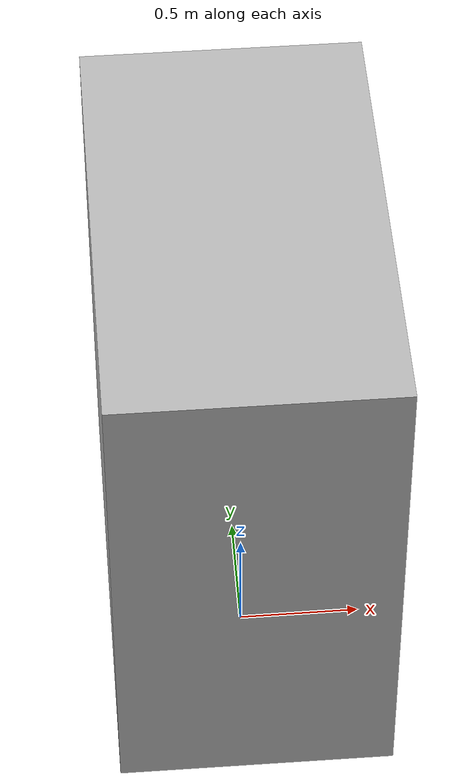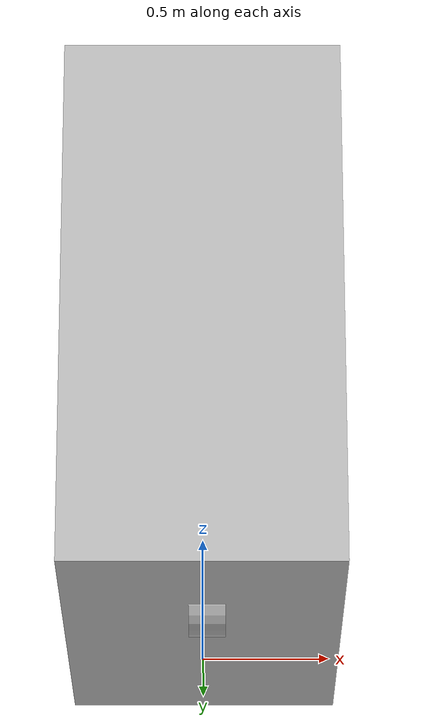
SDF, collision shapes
<?xml version="1.0"?>
<sdf version="1.5">
  <model name="agv1">

    <static>false</static>

    <pose>0.0 0.0 0.13 0.0 0.0 0.0</pose>

    <link name="base_footprint" />

    <link name="base_link">

      <inertial>
        <pose>0.005 0.1475 0.392 0 0 0</pose>
        <inertia>
          <ixx>962.268</ixx>
          <ixy>-2.68</ixy>
          <ixz>13.459</ixz>
          <iyy>963.85</iyy>
          <iyz>81.387</iyz>
          <izz>482.35</izz>
        </inertia>
        <mass>2129.355</mass>
      </inertial>

      <collision name="base_collision">
        <pose>0 0.09 1.085 0 0 0</pose>
        <geometry>
          <box>
            <size>1.108 1.87 2.195</size>
          </box>
        </geometry>
      </collision>

      <visual name="base_visual">
        <pose>0 0 0 0 0 0</pose>
        <geometry>
          <mesh>
            <uri>model://agv_common/meshes/BODY.stl</uri>
          </mesh>
        </geometry>
      </visual>
    </link>

    <link name="steering_part">

      <inertial>
        <pose>-0.0456 -0.212 0.345 0 0 0</pose>
        <inertia>
          <ixx>2.77</ixx>
          <ixy>0</ixy>
          <ixz>0.12</ixz>
          <iyy>2.81</iyy>
          <iyz>-0.11</iyz>
          <izz>0.92</izz>
        </inertia>
        <mass>85.056</mass>
      </inertial>

      <collision name="steering_part_collision">
        <pose>-0.0106 -0.202 0.345 0 0 0</pose>
        <geometry>
          <cylinder>
            <radius>0.175</radius>
            <length>0.158</length>
          </cylinder>
        </geometry>
        <surface>
          <friction>
            <ode>
              <mu>100000.0</mu>
              <mu2>100000.0</mu2>
              <fdir1>0 0 0</fdir1>
              <slip1>0.0</slip1>
              <slip2>0.0</slip2>
            </ode>
          </friction>
          <contact>
            <ode>
              <soft_cfm>0</soft_cfm>
              <soft_erp>0.2</soft_erp>
              <kp>1e+5</kp>
              <kd>1</kd>
              <max_vel>0.01</max_vel>
              <min_depth>0.001</min_depth>
            </ode>
          </contact>
        </surface>
      </collision>

      <visual name="steering_part_visual">
        <pose>-0.0456 -0.212 0.345 0 0 0</pose>
        <geometry>
          <mesh>
            <uri>model://agv_common/meshes/STEERING_PART_RE2.stl</uri>
          </mesh>
        </geometry>
      </visual>
    </link>

    <link name="drive_wheel">

      <inertial>
        <pose>0.0175 -0.2 0.06 0 0 0</pose>
        <inertia>
          <ixx>0.265</ixx>
          <ixy>0.0</ixy>
          <ixz>0.0</ixz>
          <iyy>0.166</iyy>
          <iyz>0.0</iyz>
          <izz>0.166</izz>
        </inertia>
        <mass>21.755</mass>
      </inertial>

      <collision name="drive_wheel_collision">
        <pose>0.0175 -0.2 0.06 0 1.571 0</pose>
        <geometry>
          <cylinder>
            <radius>0.155</radius>
            <length>0.145</length>
          </cylinder>
        </geometry>
        <surface>
          <friction>
            <ode>
              <mu>100000.0</mu>
              <mu2>100000.0</mu2>
              <fdir1>0 0 0</fdir1>
              <slip1>0.0</slip1>
              <slip2>0.0</slip2>
            </ode>
          </friction>
          <contact>
            <ode>
              <soft_cfm>0</soft_cfm>
              <soft_erp>0.2</soft_erp>
              <kp>1e+5</kp>
              <kd>1</kd>
              <max_vel>0.01</max_vel>
              <min_depth>0.001</min_depth>
            </ode>
          </contact>
        </surface>
      </collision>

      <visual name="drive_wheel_visual">
        <pose>0.0175 -0.2 0.06 0 0 0</pose>
        <geometry>
          <mesh>
            <uri>model://agv_common/meshes/DRIVE_WHEEL_RE2.stl</uri>
          </mesh>
        </geometry>
      </visual>
    </link>

    <joint name="base_joint" type="fixed">
      <parent>base_footprint</parent>
      <child>base_link</child>
      <pose>0.0 0.0 1.0 0 0 0</pose>
    </joint>

    <joint name="steering_link_joint" type="revoute">
      <parent>base_link</parent>
      <child>steering_part</child>
      <pose>0.0456 -0.212 0.345 0 0 0</pose>
      <axis>
        <xyz>0 0 1</xyz>
      </axis>
    </joint>

    <joint name="drive_wheel_joint" type="revolute">
      <parent>stearing_part</parent>
      <child>drive_wheel</child>
      <pose>0.0175 -0.2 0.06 0 0 0</pose>
      <axis>
        <xyz>0 1 0</xyz>
      </axis>
    </joint>

  </model>
</sdf>
